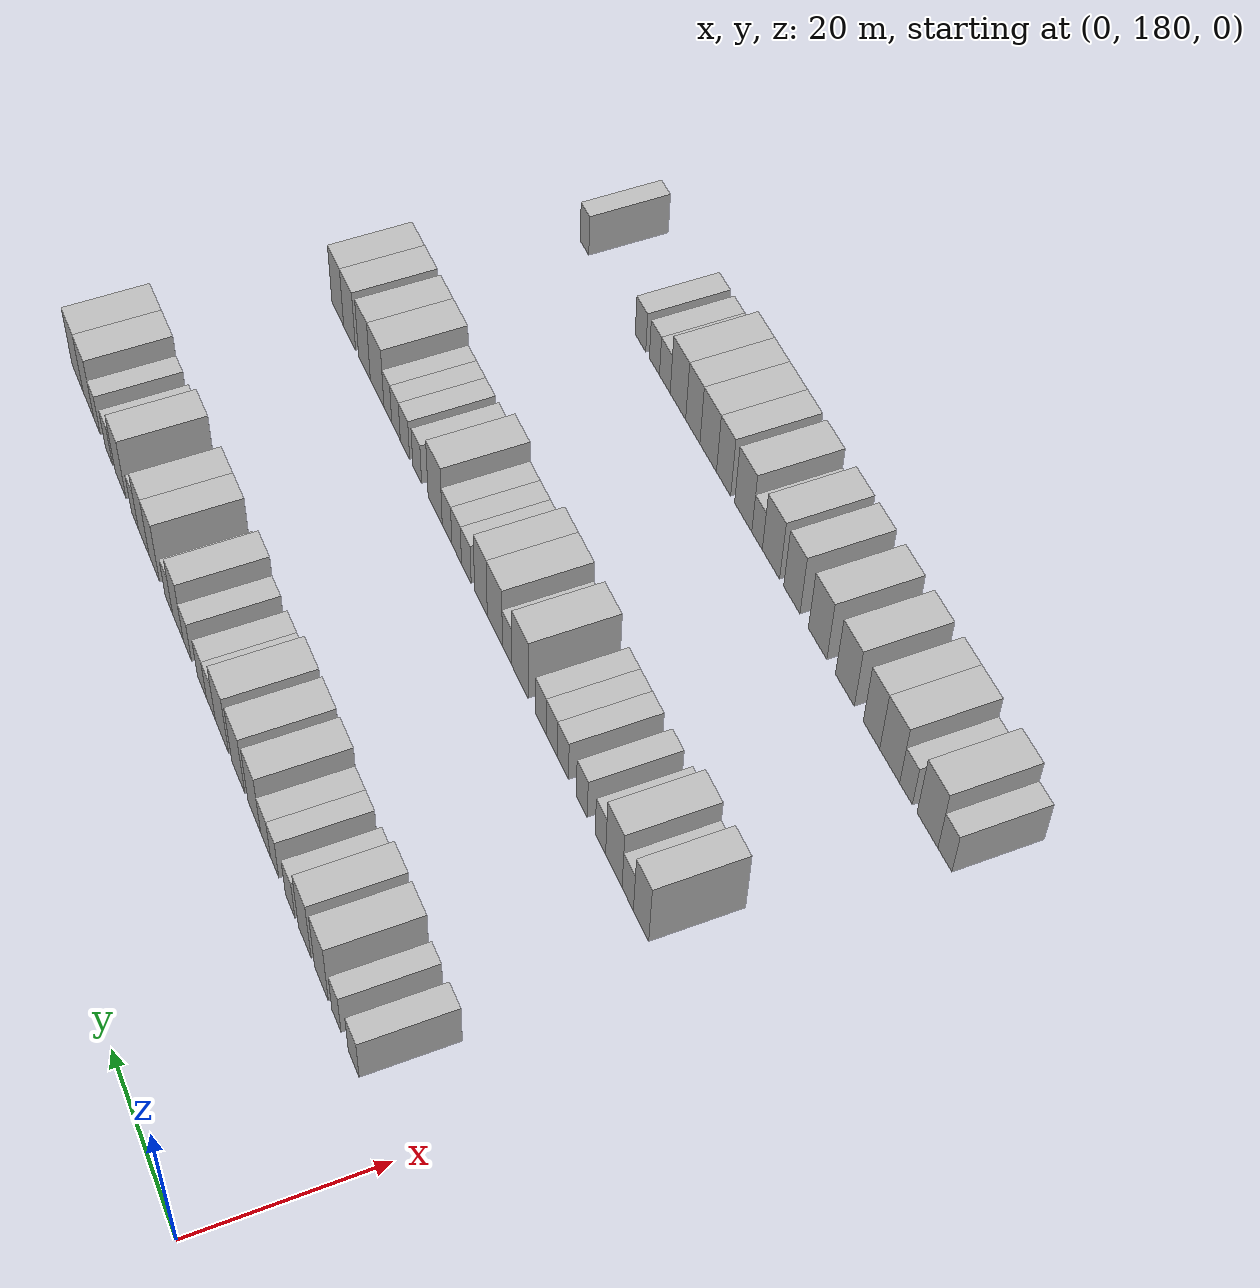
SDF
<sdf version="1.6">
 <world name="default">
  <model name="building_110">
   <static>1</static>
   <pose>25.0000 190.4862 0 0.000000 0.000000 0.000000</pose>
   <link name="link">
    <pose>0 0 3.00 0 0 0</pose>
    <collision name="collision"><geometry><box><size>10.0000 2.9526 6.0000</size></box></geometry></collision>
    <visual name="visual">
     <cast_shadows>0</cast_shadows>
     <geometry><box><size>10.0000 2.9526 6.0000</size></box></geometry>
     <material>
      <script>
       <uri>model://HANNAS_wall/materials/scripts</uri>
       <uri>model://HANNAS_wall/materials/textures</uri>
       <name>vrc/HANNAS_wall</name>
      </script>
     </material>
    </visual>
   </link>
  </model>
  <model name="building_111">
   <static>1</static>
   <pose>25.0000 195.2304 0 0.000000 0.000000 0.000000</pose>
   <link name="link">
    <pose>0 0 3.00 0 0 0</pose>
    <collision name="collision"><geometry><box><size>10.0000 2.5358 6.0000</size></box></geometry></collision>
    <visual name="visual">
     <cast_shadows>0</cast_shadows>
     <geometry><box><size>10.0000 2.5358 6.0000</size></box></geometry>
     <material>
      <script>
       <uri>model://HANNAS_wall/materials/scripts</uri>
       <uri>model://HANNAS_wall/materials/textures</uri>
       <name>vrc/HANNAS_wall</name>
      </script>
     </material>
    </visual>
   </link>
  </model>
  <model name="building_112">
   <static>1</static>
   <pose>25.0000 199.4481 0 0.000000 0.000000 0.000000</pose>
   <link name="link">
    <pose>0 0 4.50 0 0 0</pose>
    <collision name="collision"><geometry><box><size>10.0000 3.8996 9.0000</size></box></geometry></collision>
    <visual name="visual">
     <cast_shadows>0</cast_shadows>
     <geometry><box><size>10.0000 3.8996 9.0000</size></box></geometry>
     <material>
      <script>
       <uri>model://HANNAS_wall/materials/scripts</uri>
       <uri>model://HANNAS_wall/materials/textures</uri>
       <name>vrc/HANNAS_wall</name>
      </script>
     </material>
    </visual>
   </link>
  </model>
  <model name="building_113">
   <static>1</static>
   <pose>25.0000 204.2428 0 0.000000 0.000000 0.000000</pose>
   <link name="link">
    <pose>0 0 4.50 0 0 0</pose>
    <collision name="collision"><geometry><box><size>10.0000 3.6897 9.0000</size></box></geometry></collision>
    <visual name="visual">
     <cast_shadows>0</cast_shadows>
     <geometry><box><size>10.0000 3.6897 9.0000</size></box></geometry>
     <material>
      <script>
       <uri>model://HANNAS_wall/materials/scripts</uri>
       <uri>model://HANNAS_wall/materials/textures</uri>
       <name>vrc/HANNAS_wall</name>
      </script>
     </material>
    </visual>
   </link>
  </model>
  <model name="building_114">
   <static>1</static>
   <pose>25.0000 208.4911 0 0.000000 0.000000 0.000000</pose>
   <link name="link">
    <pose>0 0 3.00 0 0 0</pose>
    <collision name="collision"><geometry><box><size>10.0000 2.8071 6.0000</size></box></geometry></collision>
    <visual name="visual">
     <cast_shadows>0</cast_shadows>
     <geometry><box><size>10.0000 2.8071 6.0000</size></box></geometry>
     <material>
      <script>
       <uri>model://HANNAS_wall/materials/scripts</uri>
       <uri>model://HANNAS_wall/materials/textures</uri>
       <name>vrc/HANNAS_wall</name>
      </script>
     </material>
    </visual>
   </link>
  </model>
  <model name="building_115">
   <static>1</static>
   <pose>25.0000 213.1761 0 0.000000 0.000000 0.000000</pose>
   <link name="link">
    <pose>0 0 3.00 0 0 0</pose>
    <collision name="collision"><geometry><box><size>10.0000 2.5628 6.0000</size></box></geometry></collision>
    <visual name="visual">
     <cast_shadows>0</cast_shadows>
     <geometry><box><size>10.0000 2.5628 6.0000</size></box></geometry>
     <material>
      <script>
       <uri>model://HANNAS_wall/materials/scripts</uri>
       <uri>model://HANNAS_wall/materials/textures</uri>
       <name>vrc/HANNAS_wall</name>
      </script>
     </material>
    </visual>
   </link>
  </model>
  <model name="building_116">
   <static>1</static>
   <pose>25.0000 215.9427 0 0.000000 0.000000 0.000000</pose>
   <link name="link">
    <pose>0 0 3.00 0 0 0</pose>
    <collision name="collision"><geometry><box><size>10.0000 2.9705 6.0000</size></box></geometry></collision>
    <visual name="visual">
     <cast_shadows>0</cast_shadows>
     <geometry><box><size>10.0000 2.9705 6.0000</size></box></geometry>
     <material>
      <script>
       <uri>model://HANNAS_wall/materials/scripts</uri>
       <uri>model://HANNAS_wall/materials/textures</uri>
       <name>vrc/HANNAS_wall</name>
      </script>
     </material>
    </visual>
   </link>
  </model>
  <model name="building_117">
   <static>1</static>
   <pose>25.0000 219.3838 0 0.000000 0.000000 0.000000</pose>
   <link name="link">
    <pose>0 0 4.50 0 0 0</pose>
    <collision name="collision"><geometry><box><size>10.0000 3.9117 9.0000</size></box></geometry></collision>
    <visual name="visual">
     <cast_shadows>0</cast_shadows>
     <geometry><box><size>10.0000 3.9117 9.0000</size></box></geometry>
     <material>
      <script>
       <uri>model://HANNAS_wall/materials/scripts</uri>
       <uri>model://HANNAS_wall/materials/textures</uri>
       <name>vrc/HANNAS_wall</name>
      </script>
     </material>
    </visual>
   </link>
  </model>
  <model name="building_118">
   <static>1</static>
   <pose>25.0000 224.4171 0 0.000000 0.000000 0.000000</pose>
   <link name="link">
    <pose>0 0 4.50 0 0 0</pose>
    <collision name="collision"><geometry><box><size>10.0000 4.1549 9.0000</size></box></geometry></collision>
    <visual name="visual">
     <cast_shadows>0</cast_shadows>
     <geometry><box><size>10.0000 4.1549 9.0000</size></box></geometry>
     <material>
      <script>
       <uri>model://HANNAS_wall/materials/scripts</uri>
       <uri>model://HANNAS_wall/materials/textures</uri>
       <name>vrc/HANNAS_wall</name>
      </script>
     </material>
    </visual>
   </link>
  </model>
  <model name="building_119">
   <static>1</static>
   <pose>25.0000 229.6644 0 0.000000 0.000000 0.000000</pose>
   <link name="link">
    <pose>0 0 4.50 0 0 0</pose>
    <collision name="collision"><geometry><box><size>10.0000 4.3395 9.0000</size></box></geometry></collision>
    <visual name="visual">
     <cast_shadows>0</cast_shadows>
     <geometry><box><size>10.0000 4.3395 9.0000</size></box></geometry>
     <material>
      <script>
       <uri>model://HANNAS_wall/materials/scripts</uri>
       <uri>model://HANNAS_wall/materials/textures</uri>
       <name>vrc/HANNAS_wall</name>
      </script>
     </material>
    </visual>
   </link>
  </model>
  <model name="building_120">
   <static>1</static>
   <pose>25.0000 233.3207 0 0.000000 0.000000 0.000000</pose>
   <link name="link">
    <pose>0 0 3.00 0 0 0</pose>
    <collision name="collision"><geometry><box><size>10.0000 2.9731 6.0000</size></box></geometry></collision>
    <visual name="visual">
     <cast_shadows>0</cast_shadows>
     <geometry><box><size>10.0000 2.9731 6.0000</size></box></geometry>
     <material>
      <script>
       <uri>model://HANNAS_wall/materials/scripts</uri>
       <uri>model://HANNAS_wall/materials/textures</uri>
       <name>vrc/HANNAS_wall</name>
      </script>
     </material>
    </visual>
   </link>
  </model>
  <model name="building_121">
   <static>1</static>
   <pose>25.0000 236.2918 0 0.000000 0.000000 0.000000</pose>
   <link name="link">
    <pose>0 0 3.00 0 0 0</pose>
    <collision name="collision"><geometry><box><size>10.0000 2.9690 6.0000</size></box></geometry></collision>
    <visual name="visual">
     <cast_shadows>0</cast_shadows>
     <geometry><box><size>10.0000 2.9690 6.0000</size></box></geometry>
     <material>
      <script>
       <uri>model://HANNAS_wall/materials/scripts</uri>
       <uri>model://HANNAS_wall/materials/textures</uri>
       <name>vrc/HANNAS_wall</name>
      </script>
     </material>
    </visual>
   </link>
  </model>
  <model name="building_122">
   <static>1</static>
   <pose>25.0000 241.2074 0 0.000000 0.000000 0.000000</pose>
   <link name="link">
    <pose>0 0 3.00 0 0 0</pose>
    <collision name="collision"><geometry><box><size>10.0000 2.8623 6.0000</size></box></geometry></collision>
    <visual name="visual">
     <cast_shadows>0</cast_shadows>
     <geometry><box><size>10.0000 2.8623 6.0000</size></box></geometry>
     <material>
      <script>
       <uri>model://HANNAS_wall/materials/scripts</uri>
       <uri>model://HANNAS_wall/materials/textures</uri>
       <name>vrc/HANNAS_wall</name>
      </script>
     </material>
    </visual>
   </link>
  </model>
  <model name="building_123">
   <static>1</static>
   <pose>25.0000 244.4701 0 0.000000 0.000000 0.000000</pose>
   <link name="link">
    <pose>0 0 4.50 0 0 0</pose>
    <collision name="collision"><geometry><box><size>10.0000 3.6630 9.0000</size></box></geometry></collision>
    <visual name="visual">
     <cast_shadows>0</cast_shadows>
     <geometry><box><size>10.0000 3.6630 9.0000</size></box></geometry>
     <material>
      <script>
       <uri>model://HANNAS_wall/materials/scripts</uri>
       <uri>model://HANNAS_wall/materials/textures</uri>
       <name>vrc/HANNAS_wall</name>
      </script>
     </material>
    </visual>
   </link>
  </model>
  <model name="building_124">
   <static>1</static>
   <pose>25.0000 247.6205 0 0.000000 0.000000 0.000000</pose>
   <link name="link">
    <pose>0 0 3.00 0 0 0</pose>
    <collision name="collision"><geometry><box><size>10.0000 2.6377 6.0000</size></box></geometry></collision>
    <visual name="visual">
     <cast_shadows>0</cast_shadows>
     <geometry><box><size>10.0000 2.6377 6.0000</size></box></geometry>
     <material>
      <script>
       <uri>model://HANNAS_wall/materials/scripts</uri>
       <uri>model://HANNAS_wall/materials/textures</uri>
       <name>vrc/HANNAS_wall</name>
      </script>
     </material>
    </visual>
   </link>
  </model>
  <model name="building_125">
   <static>1</static>
   <pose>25.0000 252.8064 0 0.000000 0.000000 0.000000</pose>
   <link name="link">
    <pose>0 0 4.50 0 0 0</pose>
    <collision name="collision"><geometry><box><size>10.0000 3.7341 9.0000</size></box></geometry></collision>
    <visual name="visual">
     <cast_shadows>0</cast_shadows>
     <geometry><box><size>10.0000 3.7341 9.0000</size></box></geometry>
     <material>
      <script>
       <uri>model://HANNAS_wall/materials/scripts</uri>
       <uri>model://HANNAS_wall/materials/textures</uri>
       <name>vrc/HANNAS_wall</name>
      </script>
     </material>
    </visual>
   </link>
  </model>
  <model name="building_126">
   <static>1</static>
   <pose>25.0000 256.6091 0 0.000000 0.000000 0.000000</pose>
   <link name="link">
    <pose>0 0 4.50 0 0 0</pose>
    <collision name="collision"><geometry><box><size>10.0000 3.8714 9.0000</size></box></geometry></collision>
    <visual name="visual">
     <cast_shadows>0</cast_shadows>
     <geometry><box><size>10.0000 3.8714 9.0000</size></box></geometry>
     <material>
      <script>
       <uri>model://HANNAS_wall/materials/scripts</uri>
       <uri>model://HANNAS_wall/materials/textures</uri>
       <name>vrc/HANNAS_wall</name>
      </script>
     </material>
    </visual>
   </link>
  </model>
  <model name="building_127">
   <static>1</static>
   <pose>25.0000 259.8585 0 0.000000 0.000000 0.000000</pose>
   <link name="link">
    <pose>0 0 3.00 0 0 0</pose>
    <collision name="collision"><geometry><box><size>10.0000 2.6273 6.0000</size></box></geometry></collision>
    <visual name="visual">
     <cast_shadows>0</cast_shadows>
     <geometry><box><size>10.0000 2.6273 6.0000</size></box></geometry>
     <material>
      <script>
       <uri>model://HANNAS_wall/materials/scripts</uri>
       <uri>model://HANNAS_wall/materials/textures</uri>
       <name>vrc/HANNAS_wall</name>
      </script>
     </material>
    </visual>
   </link>
  </model>
  <model name="building_128">
   <static>1</static>
   <pose>25.0000 265.2239 0 0.000000 0.000000 0.000000</pose>
   <link name="link">
    <pose>0 0 4.50 0 0 0</pose>
    <collision name="collision"><geometry><box><size>10.0000 4.1036 9.0000</size></box></geometry></collision>
    <visual name="visual">
     <cast_shadows>0</cast_shadows>
     <geometry><box><size>10.0000 4.1036 9.0000</size></box></geometry>
     <material>
      <script>
       <uri>model://HANNAS_wall/materials/scripts</uri>
       <uri>model://HANNAS_wall/materials/textures</uri>
       <name>vrc/HANNAS_wall</name>
      </script>
     </material>
    </visual>
   </link>
  </model>
  <model name="building_129">
   <static>1</static>
   <pose>25.0000 269.6409 0 0.000000 0.000000 0.000000</pose>
   <link name="link">
    <pose>0 0 3.00 0 0 0</pose>
    <collision name="collision"><geometry><box><size>10.0000 2.7303 6.0000</size></box></geometry></collision>
    <visual name="visual">
     <cast_shadows>0</cast_shadows>
     <geometry><box><size>10.0000 2.7303 6.0000</size></box></geometry>
     <material>
      <script>
       <uri>model://HANNAS_wall/materials/scripts</uri>
       <uri>model://HANNAS_wall/materials/textures</uri>
       <name>vrc/HANNAS_wall</name>
      </script>
     </material>
    </visual>
   </link>
  </model>
  <model name="building_130">
   <static>1</static>
   <pose>25.0000 274.3004 0 0.000000 0.000000 0.000000</pose>
   <link name="link">
    <pose>0 0 3.00 0 0 0</pose>
    <collision name="collision"><geometry><box><size>10.0000 2.5887 6.0000</size></box></geometry></collision>
    <visual name="visual">
     <cast_shadows>0</cast_shadows>
     <geometry><box><size>10.0000 2.5887 6.0000</size></box></geometry>
     <material>
      <script>
       <uri>model://HANNAS_wall/materials/scripts</uri>
       <uri>model://HANNAS_wall/materials/textures</uri>
       <name>vrc/HANNAS_wall</name>
      </script>
     </material>
    </visual>
   </link>
  </model>
  <model name="building_131">
   <static>1</static>
   <pose>25.0000 277.7211 0 0.000000 0.000000 0.000000</pose>
   <link name="link">
    <pose>0 0 4.50 0 0 0</pose>
    <collision name="collision"><geometry><box><size>10.0000 4.2528 9.0000</size></box></geometry></collision>
    <visual name="visual">
     <cast_shadows>0</cast_shadows>
     <geometry><box><size>10.0000 4.2528 9.0000</size></box></geometry>
     <material>
      <script>
       <uri>model://HANNAS_wall/materials/scripts</uri>
       <uri>model://HANNAS_wall/materials/textures</uri>
       <name>vrc/HANNAS_wall</name>
      </script>
     </material>
    </visual>
   </link>
  </model>
  <model name="building_132">
   <static>1</static>
   <pose>25.0000 282.0344 0 0.000000 0.000000 0.000000</pose>
   <link name="link">
    <pose>0 0 4.50 0 0 0</pose>
    <collision name="collision"><geometry><box><size>10.0000 4.3738 9.0000</size></box></geometry></collision>
    <visual name="visual">
     <cast_shadows>0</cast_shadows>
     <geometry><box><size>10.0000 4.3738 9.0000</size></box></geometry>
     <material>
      <script>
       <uri>model://HANNAS_wall/materials/scripts</uri>
       <uri>model://HANNAS_wall/materials/textures</uri>
       <name>vrc/HANNAS_wall</name>
      </script>
     </material>
    </visual>
   </link>
  </model>
  <model name="building_249">
   <static>1</static>
   <pose>55.0000 194.1920 0 0.000000 0.000000 0.000000</pose>
   <link name="link">
    <pose>0 0 4.50 0 0 0</pose>
    <collision name="collision"><geometry><box><size>10.0000 3.6517 9.0000</size></box></geometry></collision>
    <visual name="visual">
     <cast_shadows>0</cast_shadows>
     <geometry><box><size>10.0000 3.6517 9.0000</size></box></geometry>
     <material>
      <script>
       <uri>model://HANNAS_wall/materials/scripts</uri>
       <uri>model://HANNAS_wall/materials/textures</uri>
       <name>vrc/HANNAS_wall</name>
      </script>
     </material>
    </visual>
   </link>
  </model>
  <model name="building_250">
   <static>1</static>
   <pose>55.0000 197.3903 0 0.000000 0.000000 0.000000</pose>
   <link name="link">
    <pose>0 0 3.00 0 0 0</pose>
    <collision name="collision"><geometry><box><size>10.0000 2.7451 6.0000</size></box></geometry></collision>
    <visual name="visual">
     <cast_shadows>0</cast_shadows>
     <geometry><box><size>10.0000 2.7451 6.0000</size></box></geometry>
     <material>
      <script>
       <uri>model://HANNAS_wall/materials/scripts</uri>
       <uri>model://HANNAS_wall/materials/textures</uri>
       <name>vrc/HANNAS_wall</name>
      </script>
     </material>
    </visual>
   </link>
  </model>
  <model name="building_251">
   <static>1</static>
   <pose>55.0000 200.7779 0 0.000000 0.000000 0.000000</pose>
   <link name="link">
    <pose>0 0 4.50 0 0 0</pose>
    <collision name="collision"><geometry><box><size>10.0000 4.0300 9.0000</size></box></geometry></collision>
    <visual name="visual">
     <cast_shadows>0</cast_shadows>
     <geometry><box><size>10.0000 4.0300 9.0000</size></box></geometry>
     <material>
      <script>
       <uri>model://HANNAS_wall/materials/scripts</uri>
       <uri>model://HANNAS_wall/materials/textures</uri>
       <name>vrc/HANNAS_wall</name>
      </script>
     </material>
    </visual>
   </link>
  </model>
  <model name="building_252">
   <static>1</static>
   <pose>55.0000 204.0960 0 0.000000 0.000000 0.000000</pose>
   <link name="link">
    <pose>0 0 3.00 0 0 0</pose>
    <collision name="collision"><geometry><box><size>10.0000 2.6061 6.0000</size></box></geometry></collision>
    <visual name="visual">
     <cast_shadows>0</cast_shadows>
     <geometry><box><size>10.0000 2.6061 6.0000</size></box></geometry>
     <material>
      <script>
       <uri>model://HANNAS_wall/materials/scripts</uri>
       <uri>model://HANNAS_wall/materials/textures</uri>
       <name>vrc/HANNAS_wall</name>
      </script>
     </material>
    </visual>
   </link>
  </model>
  <model name="building_253">
   <static>1</static>
   <pose>55.0000 208.7907 0 0.000000 0.000000 0.000000</pose>
   <link name="link">
    <pose>0 0 3.00 0 0 0</pose>
    <collision name="collision"><geometry><box><size>10.0000 2.7834 6.0000</size></box></geometry></collision>
    <visual name="visual">
     <cast_shadows>0</cast_shadows>
     <geometry><box><size>10.0000 2.7834 6.0000</size></box></geometry>
     <material>
      <script>
       <uri>model://HANNAS_wall/materials/scripts</uri>
       <uri>model://HANNAS_wall/materials/textures</uri>
       <name>vrc/HANNAS_wall</name>
      </script>
     </material>
    </visual>
   </link>
  </model>
  <model name="building_254">
   <static>1</static>
   <pose>55.0000 213.6158 0 0.000000 0.000000 0.000000</pose>
   <link name="link">
    <pose>0 0 3.00 0 0 0</pose>
    <collision name="collision"><geometry><box><size>10.0000 2.8669 6.0000</size></box></geometry></collision>
    <visual name="visual">
     <cast_shadows>0</cast_shadows>
     <geometry><box><size>10.0000 2.8669 6.0000</size></box></geometry>
     <material>
      <script>
       <uri>model://HANNAS_wall/materials/scripts</uri>
       <uri>model://HANNAS_wall/materials/textures</uri>
       <name>vrc/HANNAS_wall</name>
      </script>
     </material>
    </visual>
   </link>
  </model>
  <model name="building_255">
   <static>1</static>
   <pose>55.0000 216.5187 0 0.000000 0.000000 0.000000</pose>
   <link name="link">
    <pose>0 0 3.00 0 0 0</pose>
    <collision name="collision"><geometry><box><size>10.0000 2.9388 6.0000</size></box></geometry></collision>
    <visual name="visual">
     <cast_shadows>0</cast_shadows>
     <geometry><box><size>10.0000 2.9388 6.0000</size></box></geometry>
     <material>
      <script>
       <uri>model://HANNAS_wall/materials/scripts</uri>
       <uri>model://HANNAS_wall/materials/textures</uri>
       <name>vrc/HANNAS_wall</name>
      </script>
     </material>
    </visual>
   </link>
  </model>
  <model name="building_256">
   <static>1</static>
   <pose>55.0000 219.4095 0 0.000000 0.000000 0.000000</pose>
   <link name="link">
    <pose>0 0 3.00 0 0 0</pose>
    <collision name="collision"><geometry><box><size>10.0000 2.8428 6.0000</size></box></geometry></collision>
    <visual name="visual">
     <cast_shadows>0</cast_shadows>
     <geometry><box><size>10.0000 2.8428 6.0000</size></box></geometry>
     <material>
      <script>
       <uri>model://HANNAS_wall/materials/scripts</uri>
       <uri>model://HANNAS_wall/materials/textures</uri>
       <name>vrc/HANNAS_wall</name>
      </script>
     </material>
    </visual>
   </link>
  </model>
  <model name="building_257">
   <static>1</static>
   <pose>55.0000 225.0329 0 0.000000 0.000000 0.000000</pose>
   <link name="link">
    <pose>0 0 4.50 0 0 0</pose>
    <collision name="collision"><geometry><box><size>10.0000 4.4040 9.0000</size></box></geometry></collision>
    <visual name="visual">
     <cast_shadows>0</cast_shadows>
     <geometry><box><size>10.0000 4.4040 9.0000</size></box></geometry>
     <material>
      <script>
       <uri>model://HANNAS_wall/materials/scripts</uri>
       <uri>model://HANNAS_wall/materials/textures</uri>
       <name>vrc/HANNAS_wall</name>
      </script>
     </material>
    </visual>
   </link>
  </model>
  <model name="building_258">
   <static>1</static>
   <pose>55.0000 228.5661 0 0.000000 0.000000 0.000000</pose>
   <link name="link">
    <pose>0 0 3.00 0 0 0</pose>
    <collision name="collision"><geometry><box><size>10.0000 2.6625 6.0000</size></box></geometry></collision>
    <visual name="visual">
     <cast_shadows>0</cast_shadows>
     <geometry><box><size>10.0000 2.6625 6.0000</size></box></geometry>
     <material>
      <script>
       <uri>model://HANNAS_wall/materials/scripts</uri>
       <uri>model://HANNAS_wall/materials/textures</uri>
       <name>vrc/HANNAS_wall</name>
      </script>
     </material>
    </visual>
   </link>
  </model>
  <model name="building_259">
   <static>1</static>
   <pose>55.0000 232.0172 0 0.000000 0.000000 0.000000</pose>
   <link name="link">
    <pose>0 0 4.50 0 0 0</pose>
    <collision name="collision"><geometry><box><size>10.0000 4.2397 9.0000</size></box></geometry></collision>
    <visual name="visual">
     <cast_shadows>0</cast_shadows>
     <geometry><box><size>10.0000 4.2397 9.0000</size></box></geometry>
     <material>
      <script>
       <uri>model://HANNAS_wall/materials/scripts</uri>
       <uri>model://HANNAS_wall/materials/textures</uri>
       <name>vrc/HANNAS_wall</name>
      </script>
     </material>
    </visual>
   </link>
  </model>
  <model name="building_260">
   <static>1</static>
   <pose>55.0000 235.9446 0 0.000000 0.000000 0.000000</pose>
   <link name="link">
    <pose>0 0 4.50 0 0 0</pose>
    <collision name="collision"><geometry><box><size>10.0000 3.6149 9.0000</size></box></geometry></collision>
    <visual name="visual">
     <cast_shadows>0</cast_shadows>
     <geometry><box><size>10.0000 3.6149 9.0000</size></box></geometry>
     <material>
      <script>
       <uri>model://HANNAS_wall/materials/scripts</uri>
       <uri>model://HANNAS_wall/materials/textures</uri>
       <name>vrc/HANNAS_wall</name>
      </script>
     </material>
    </visual>
   </link>
  </model>
  <model name="building_261">
   <static>1</static>
   <pose>55.0000 240.1584 0 0.000000 0.000000 0.000000</pose>
   <link name="link">
    <pose>0 0 3.00 0 0 0</pose>
    <collision name="collision"><geometry><box><size>10.0000 2.8128 6.0000</size></box></geometry></collision>
    <visual name="visual">
     <cast_shadows>0</cast_shadows>
     <geometry><box><size>10.0000 2.8128 6.0000</size></box></geometry>
     <material>
      <script>
       <uri>model://HANNAS_wall/materials/scripts</uri>
       <uri>model://HANNAS_wall/materials/textures</uri>
       <name>vrc/HANNAS_wall</name>
      </script>
     </material>
    </visual>
   </link>
  </model>
  <model name="building_262">
   <static>1</static>
   <pose>55.0000 242.9865 0 0.000000 0.000000 0.000000</pose>
   <link name="link">
    <pose>0 0 3.00 0 0 0</pose>
    <collision name="collision"><geometry><box><size>10.0000 2.8435 6.0000</size></box></geometry></collision>
    <visual name="visual">
     <cast_shadows>0</cast_shadows>
     <geometry><box><size>10.0000 2.8435 6.0000</size></box></geometry>
     <material>
      <script>
       <uri>model://HANNAS_wall/materials/scripts</uri>
       <uri>model://HANNAS_wall/materials/textures</uri>
       <name>vrc/HANNAS_wall</name>
      </script>
     </material>
    </visual>
   </link>
  </model>
  <model name="building_263">
   <static>1</static>
   <pose>55.0000 245.8308 0 0.000000 0.000000 0.000000</pose>
   <link name="link">
    <pose>0 0 3.00 0 0 0</pose>
    <collision name="collision"><geometry><box><size>10.0000 2.8451 6.0000</size></box></geometry></collision>
    <visual name="visual">
     <cast_shadows>0</cast_shadows>
     <geometry><box><size>10.0000 2.8451 6.0000</size></box></geometry>
     <material>
      <script>
       <uri>model://HANNAS_wall/materials/scripts</uri>
       <uri>model://HANNAS_wall/materials/textures</uri>
       <name>vrc/HANNAS_wall</name>
      </script>
     </material>
    </visual>
   </link>
  </model>
  <model name="building_264">
   <static>1</static>
   <pose>55.0000 249.3842 0 0.000000 0.000000 0.000000</pose>
   <link name="link">
    <pose>0 0 4.50 0 0 0</pose>
    <collision name="collision"><geometry><box><size>10.0000 4.2617 9.0000</size></box></geometry></collision>
    <visual name="visual">
     <cast_shadows>0</cast_shadows>
     <geometry><box><size>10.0000 4.2617 9.0000</size></box></geometry>
     <material>
      <script>
       <uri>model://HANNAS_wall/materials/scripts</uri>
       <uri>model://HANNAS_wall/materials/textures</uri>
       <name>vrc/HANNAS_wall</name>
      </script>
     </material>
    </visual>
   </link>
  </model>
  <model name="building_265">
   <static>1</static>
   <pose>55.0000 254.8683 0 0.000000 0.000000 0.000000</pose>
   <link name="link">
    <pose>0 0 3.00 0 0 0</pose>
    <collision name="collision"><geometry><box><size>10.0000 2.7066 6.0000</size></box></geometry></collision>
    <visual name="visual">
     <cast_shadows>0</cast_shadows>
     <geometry><box><size>10.0000 2.7066 6.0000</size></box></geometry>
     <material>
      <script>
       <uri>model://HANNAS_wall/materials/scripts</uri>
       <uri>model://HANNAS_wall/materials/textures</uri>
       <name>vrc/HANNAS_wall</name>
      </script>
     </material>
    </visual>
   </link>
  </model>
  <model name="building_266">
   <static>1</static>
   <pose>55.0000 258.6798 0 0.000000 0.000000 0.000000</pose>
   <link name="link">
    <pose>0 0 3.00 0 0 0</pose>
    <collision name="collision"><geometry><box><size>10.0000 2.9165 6.0000</size></box></geometry></collision>
    <visual name="visual">
     <cast_shadows>0</cast_shadows>
     <geometry><box><size>10.0000 2.9165 6.0000</size></box></geometry>
     <material>
      <script>
       <uri>model://HANNAS_wall/materials/scripts</uri>
       <uri>model://HANNAS_wall/materials/textures</uri>
       <name>vrc/HANNAS_wall</name>
      </script>
     </material>
    </visual>
   </link>
  </model>
  <model name="building_267">
   <static>1</static>
   <pose>55.0000 261.4900 0 0.000000 0.000000 0.000000</pose>
   <link name="link">
    <pose>0 0 3.00 0 0 0</pose>
    <collision name="collision"><geometry><box><size>10.0000 2.7038 6.0000</size></box></geometry></collision>
    <visual name="visual">
     <cast_shadows>0</cast_shadows>
     <geometry><box><size>10.0000 2.7038 6.0000</size></box></geometry>
     <material>
      <script>
       <uri>model://HANNAS_wall/materials/scripts</uri>
       <uri>model://HANNAS_wall/materials/textures</uri>
       <name>vrc/HANNAS_wall</name>
      </script>
     </material>
    </visual>
   </link>
  </model>
  <model name="building_268">
   <static>1</static>
   <pose>55.0000 264.0859 0 0.000000 0.000000 0.000000</pose>
   <link name="link">
    <pose>0 0 3.00 0 0 0</pose>
    <collision name="collision"><geometry><box><size>10.0000 2.4882 6.0000</size></box></geometry></collision>
    <visual name="visual">
     <cast_shadows>0</cast_shadows>
     <geometry><box><size>10.0000 2.4882 6.0000</size></box></geometry>
     <material>
      <script>
       <uri>model://HANNAS_wall/materials/scripts</uri>
       <uri>model://HANNAS_wall/materials/textures</uri>
       <name>vrc/HANNAS_wall</name>
      </script>
     </material>
    </visual>
   </link>
  </model>
  <model name="building_269">
   <static>1</static>
   <pose>55.0000 267.5573 0 0.000000 0.000000 0.000000</pose>
   <link name="link">
    <pose>0 0 4.50 0 0 0</pose>
    <collision name="collision"><geometry><box><size>10.0000 4.4547 9.0000</size></box></geometry></collision>
    <visual name="visual">
     <cast_shadows>0</cast_shadows>
     <geometry><box><size>10.0000 4.4547 9.0000</size></box></geometry>
     <material>
      <script>
       <uri>model://HANNAS_wall/materials/scripts</uri>
       <uri>model://HANNAS_wall/materials/textures</uri>
       <name>vrc/HANNAS_wall</name>
      </script>
     </material>
    </visual>
   </link>
  </model>
  <model name="building_270">
   <static>1</static>
   <pose>55.0000 271.7180 0 0.000000 0.000000 0.000000</pose>
   <link name="link">
    <pose>0 0 4.50 0 0 0</pose>
    <collision name="collision"><geometry><box><size>10.0000 3.8666 9.0000</size></box></geometry></collision>
    <visual name="visual">
     <cast_shadows>0</cast_shadows>
     <geometry><box><size>10.0000 3.8666 9.0000</size></box></geometry>
     <material>
      <script>
       <uri>model://HANNAS_wall/materials/scripts</uri>
       <uri>model://HANNAS_wall/materials/textures</uri>
       <name>vrc/HANNAS_wall</name>
      </script>
     </material>
    </visual>
   </link>
  </model>
  <model name="building_271">
   <static>1</static>
   <pose>55.0000 276.6544 0 0.000000 0.000000 0.000000</pose>
   <link name="link">
    <pose>0 0 4.50 0 0 0</pose>
    <collision name="collision"><geometry><box><size>10.0000 4.0061 9.0000</size></box></geometry></collision>
    <visual name="visual">
     <cast_shadows>0</cast_shadows>
     <geometry><box><size>10.0000 4.0061 9.0000</size></box></geometry>
     <material>
      <script>
       <uri>model://HANNAS_wall/materials/scripts</uri>
       <uri>model://HANNAS_wall/materials/textures</uri>
       <name>vrc/HANNAS_wall</name>
      </script>
     </material>
    </visual>
   </link>
  </model>
  <model name="building_272">
   <static>1</static>
   <pose>55.0000 280.6542 0 0.000000 0.000000 0.000000</pose>
   <link name="link">
    <pose>0 0 4.50 0 0 0</pose>
    <collision name="collision"><geometry><box><size>10.0000 3.9934 9.0000</size></box></geometry></collision>
    <visual name="visual">
     <cast_shadows>0</cast_shadows>
     <geometry><box><size>10.0000 3.9934 9.0000</size></box></geometry>
     <material>
      <script>
       <uri>model://HANNAS_wall/materials/scripts</uri>
       <uri>model://HANNAS_wall/materials/textures</uri>
       <name>vrc/HANNAS_wall</name>
      </script>
     </material>
    </visual>
   </link>
  </model>
  <model name="building_382">
   <static>1</static>
   <pose>85.0000 190.1298 0 0.000000 0.000000 0.000000</pose>
   <link name="link">
    <pose>0 0 3.00 0 0 0</pose>
    <collision name="collision"><geometry><box><size>10.0000 2.9168 6.0000</size></box></geometry></collision>
    <visual name="visual">
     <cast_shadows>0</cast_shadows>
     <geometry><box><size>10.0000 2.9168 6.0000</size></box></geometry>
     <material>
      <script>
       <uri>model://HANNAS_wall/materials/scripts</uri>
       <uri>model://HANNAS_wall/materials/textures</uri>
       <name>vrc/HANNAS_wall</name>
      </script>
     </material>
    </visual>
   </link>
  </model>
  <model name="building_383">
   <static>1</static>
   <pose>85.0000 193.7921 0 0.000000 0.000000 0.000000</pose>
   <link name="link">
    <pose>0 0 4.50 0 0 0</pose>
    <collision name="collision"><geometry><box><size>10.0000 4.4079 9.0000</size></box></geometry></collision>
    <visual name="visual">
     <cast_shadows>0</cast_shadows>
     <geometry><box><size>10.0000 4.4079 9.0000</size></box></geometry>
     <material>
      <script>
       <uri>model://HANNAS_wall/materials/scripts</uri>
       <uri>model://HANNAS_wall/materials/textures</uri>
       <name>vrc/HANNAS_wall</name>
      </script>
     </material>
    </visual>
   </link>
  </model>
  <model name="building_384">
   <static>1</static>
   <pose>85.0000 198.3672 0 0.000000 0.000000 0.000000</pose>
   <link name="link">
    <pose>0 0 3.00 0 0 0</pose>
    <collision name="collision"><geometry><box><size>10.0000 2.7424 6.0000</size></box></geometry></collision>
    <visual name="visual">
     <cast_shadows>0</cast_shadows>
     <geometry><box><size>10.0000 2.7424 6.0000</size></box></geometry>
     <material>
      <script>
       <uri>model://HANNAS_wall/materials/scripts</uri>
       <uri>model://HANNAS_wall/materials/textures</uri>
       <name>vrc/HANNAS_wall</name>
      </script>
     </material>
    </visual>
   </link>
  </model>
  <model name="building_385">
   <static>1</static>
   <pose>85.0000 201.9283 0 0.000000 0.000000 0.000000</pose>
   <link name="link">
    <pose>0 0 4.50 0 0 0</pose>
    <collision name="collision"><geometry><box><size>10.0000 4.3797 9.0000</size></box></geometry></collision>
    <visual name="visual">
     <cast_shadows>0</cast_shadows>
     <geometry><box><size>10.0000 4.3797 9.0000</size></box></geometry>
     <material>
      <script>
       <uri>model://HANNAS_wall/materials/scripts</uri>
       <uri>model://HANNAS_wall/materials/textures</uri>
       <name>vrc/HANNAS_wall</name>
      </script>
     </material>
    </visual>
   </link>
  </model>
  <model name="building_386">
   <static>1</static>
   <pose>85.0000 205.9471 0 0.000000 0.000000 0.000000</pose>
   <link name="link">
    <pose>0 0 4.50 0 0 0</pose>
    <collision name="collision"><geometry><box><size>10.0000 3.6578 9.0000</size></box></geometry></collision>
    <visual name="visual">
     <cast_shadows>0</cast_shadows>
     <geometry><box><size>10.0000 3.6578 9.0000</size></box></geometry>
     <material>
      <script>
       <uri>model://HANNAS_wall/materials/scripts</uri>
       <uri>model://HANNAS_wall/materials/textures</uri>
       <name>vrc/HANNAS_wall</name>
      </script>
     </material>
    </visual>
   </link>
  </model>
  <model name="building_387">
   <static>1</static>
   <pose>85.0000 211.9366 0 0.000000 0.000000 0.000000</pose>
   <link name="link">
    <pose>0 0 4.50 0 0 0</pose>
    <collision name="collision"><geometry><box><size>10.0000 4.3212 9.0000</size></box></geometry></collision>
    <visual name="visual">
     <cast_shadows>0</cast_shadows>
     <geometry><box><size>10.0000 4.3212 9.0000</size></box></geometry>
     <material>
      <script>
       <uri>model://HANNAS_wall/materials/scripts</uri>
       <uri>model://HANNAS_wall/materials/textures</uri>
       <name>vrc/HANNAS_wall</name>
      </script>
     </material>
    </visual>
   </link>
  </model>
  <model name="building_388">
   <static>1</static>
   <pose>85.0000 218.2719 0 0.000000 0.000000 0.000000</pose>
   <link name="link">
    <pose>0 0 4.50 0 0 0</pose>
    <collision name="collision"><geometry><box><size>10.0000 4.3495 9.0000</size></box></geometry></collision>
    <visual name="visual">
     <cast_shadows>0</cast_shadows>
     <geometry><box><size>10.0000 4.3495 9.0000</size></box></geometry>
     <material>
      <script>
       <uri>model://HANNAS_wall/materials/scripts</uri>
       <uri>model://HANNAS_wall/materials/textures</uri>
       <name>vrc/HANNAS_wall</name>
      </script>
     </material>
    </visual>
   </link>
  </model>
  <model name="building_389">
   <static>1</static>
   <pose>85.0000 224.4124 0 0.000000 0.000000 0.000000</pose>
   <link name="link">
    <pose>0 0 4.50 0 0 0</pose>
    <collision name="collision"><geometry><box><size>10.0000 3.9315 9.0000</size></box></geometry></collision>
    <visual name="visual">
     <cast_shadows>0</cast_shadows>
     <geometry><box><size>10.0000 3.9315 9.0000</size></box></geometry>
     <material>
      <script>
       <uri>model://HANNAS_wall/materials/scripts</uri>
       <uri>model://HANNAS_wall/materials/textures</uri>
       <name>vrc/HANNAS_wall</name>
      </script>
     </material>
    </visual>
   </link>
  </model>
  <model name="building_390">
   <static>1</static>
   <pose>85.0000 229.5078 0 0.000000 0.000000 0.000000</pose>
   <link name="link">
    <pose>0 0 4.50 0 0 0</pose>
    <collision name="collision"><geometry><box><size>10.0000 4.2593 9.0000</size></box></geometry></collision>
    <visual name="visual">
     <cast_shadows>0</cast_shadows>
     <geometry><box><size>10.0000 4.2593 9.0000</size></box></geometry>
     <material>
      <script>
       <uri>model://HANNAS_wall/materials/scripts</uri>
       <uri>model://HANNAS_wall/materials/textures</uri>
       <name>vrc/HANNAS_wall</name>
      </script>
     </material>
    </visual>
   </link>
  </model>
  <model name="building_391">
   <static>1</static>
   <pose>85.0000 232.9535 0 0.000000 0.000000 0.000000</pose>
   <link name="link">
    <pose>0 0 3.00 0 0 0</pose>
    <collision name="collision"><geometry><box><size>10.0000 2.6321 6.0000</size></box></geometry></collision>
    <visual name="visual">
     <cast_shadows>0</cast_shadows>
     <geometry><box><size>10.0000 2.6321 6.0000</size></box></geometry>
     <material>
      <script>
       <uri>model://HANNAS_wall/materials/scripts</uri>
       <uri>model://HANNAS_wall/materials/textures</uri>
       <name>vrc/HANNAS_wall</name>
      </script>
     </material>
    </visual>
   </link>
  </model>
  <model name="building_392">
   <static>1</static>
   <pose>85.0000 236.4451 0 0.000000 0.000000 0.000000</pose>
   <link name="link">
    <pose>0 0 4.50 0 0 0</pose>
    <collision name="collision"><geometry><box><size>10.0000 4.3509 9.0000</size></box></geometry></collision>
    <visual name="visual">
     <cast_shadows>0</cast_shadows>
     <geometry><box><size>10.0000 4.3509 9.0000</size></box></geometry>
     <material>
      <script>
       <uri>model://HANNAS_wall/materials/scripts</uri>
       <uri>model://HANNAS_wall/materials/textures</uri>
       <name>vrc/HANNAS_wall</name>
      </script>
     </material>
    </visual>
   </link>
  </model>
  <model name="building_393">
   <static>1</static>
   <pose>85.0000 241.4565 0 0.000000 0.000000 0.000000</pose>
   <link name="link">
    <pose>0 0 4.50 0 0 0</pose>
    <collision name="collision"><geometry><box><size>10.0000 3.6719 9.0000</size></box></geometry></collision>
    <visual name="visual">
     <cast_shadows>0</cast_shadows>
     <geometry><box><size>10.0000 3.6719 9.0000</size></box></geometry>
     <material>
      <script>
       <uri>model://HANNAS_wall/materials/scripts</uri>
       <uri>model://HANNAS_wall/materials/textures</uri>
       <name>vrc/HANNAS_wall</name>
      </script>
     </material>
    </visual>
   </link>
  </model>
  <model name="building_394">
   <static>1</static>
   <pose>85.0000 245.4741 0 0.000000 0.000000 0.000000</pose>
   <link name="link">
    <pose>0 0 4.50 0 0 0</pose>
    <collision name="collision"><geometry><box><size>10.0000 4.3633 9.0000</size></box></geometry></collision>
    <visual name="visual">
     <cast_shadows>0</cast_shadows>
     <geometry><box><size>10.0000 4.3633 9.0000</size></box></geometry>
     <material>
      <script>
       <uri>model://HANNAS_wall/materials/scripts</uri>
       <uri>model://HANNAS_wall/materials/textures</uri>
       <name>vrc/HANNAS_wall</name>
      </script>
     </material>
    </visual>
   </link>
  </model>
  <model name="building_395">
   <static>1</static>
   <pose>85.0000 249.5579 0 0.000000 0.000000 0.000000</pose>
   <link name="link">
    <pose>0 0 4.50 0 0 0</pose>
    <collision name="collision"><geometry><box><size>10.0000 3.8043 9.0000</size></box></geometry></collision>
    <visual name="visual">
     <cast_shadows>0</cast_shadows>
     <geometry><box><size>10.0000 3.8043 9.0000</size></box></geometry>
     <material>
      <script>
       <uri>model://HANNAS_wall/materials/scripts</uri>
       <uri>model://HANNAS_wall/materials/textures</uri>
       <name>vrc/HANNAS_wall</name>
      </script>
     </material>
    </visual>
   </link>
  </model>
  <model name="building_396">
   <static>1</static>
   <pose>85.0000 253.5623 0 0.000000 0.000000 0.000000</pose>
   <link name="link">
    <pose>0 0 4.50 0 0 0</pose>
    <collision name="collision"><geometry><box><size>10.0000 4.2045 9.0000</size></box></geometry></collision>
    <visual name="visual">
     <cast_shadows>0</cast_shadows>
     <geometry><box><size>10.0000 4.2045 9.0000</size></box></geometry>
     <material>
      <script>
       <uri>model://HANNAS_wall/materials/scripts</uri>
       <uri>model://HANNAS_wall/materials/textures</uri>
       <name>vrc/HANNAS_wall</name>
      </script>
     </material>
    </visual>
   </link>
  </model>
  <model name="building_397">
   <static>1</static>
   <pose>85.0000 257.1442 0 0.000000 0.000000 0.000000</pose>
   <link name="link">
    <pose>0 0 3.00 0 0 0</pose>
    <collision name="collision"><geometry><box><size>10.0000 2.9591 6.0000</size></box></geometry></collision>
    <visual name="visual">
     <cast_shadows>0</cast_shadows>
     <geometry><box><size>10.0000 2.9591 6.0000</size></box></geometry>
     <material>
      <script>
       <uri>model://HANNAS_wall/materials/scripts</uri>
       <uri>model://HANNAS_wall/materials/textures</uri>
       <name>vrc/HANNAS_wall</name>
      </script>
     </material>
    </visual>
   </link>
  </model>
  <model name="building_398">
   <static>1</static>
   <pose>85.0000 260.0306 0 0.000000 0.000000 0.000000</pose>
   <link name="link">
    <pose>0 0 3.00 0 0 0</pose>
    <collision name="collision"><geometry><box><size>10.0000 2.8139 6.0000</size></box></geometry></collision>
    <visual name="visual">
     <cast_shadows>0</cast_shadows>
     <geometry><box><size>10.0000 2.8139 6.0000</size></box></geometry>
     <material>
      <script>
       <uri>model://HANNAS_wall/materials/scripts</uri>
       <uri>model://HANNAS_wall/materials/textures</uri>
       <name>vrc/HANNAS_wall</name>
      </script>
     </material>
    </visual>
   </link>
  </model>
  <model name="building_399">
   <static>1</static>
   <pose>85.0000 263.9244 0 0.000000 0.000000 0.000000</pose>
   <link name="link">
    <pose>0 0 3.00 0 0 0</pose>
    <collision name="collision"><geometry><box><size>10.0000 2.9736 6.0000</size></box></geometry></collision>
    <visual name="visual">
     <cast_shadows>0</cast_shadows>
     <geometry><box><size>10.0000 2.9736 6.0000</size></box></geometry>
     <material>
      <script>
       <uri>model://HANNAS_wall/materials/scripts</uri>
       <uri>model://HANNAS_wall/materials/textures</uri>
       <name>vrc/HANNAS_wall</name>
      </script>
     </material>
    </visual>
   </link>
  </model>
  <model name="building_400">
   <static>1</static>
   <pose>85.0000 280.2489 0 0.000000 0.000000 0.000000</pose>
   <link name="link">
    <pose>0 0 3.00 0 0 0</pose>
    <collision name="collision"><geometry><box><size>10.0000 2.5585 6.0000</size></box></geometry></collision>
    <visual name="visual">
     <cast_shadows>0</cast_shadows>
     <geometry><box><size>10.0000 2.5585 6.0000</size></box></geometry>
     <material>
      <script>
       <uri>model://HANNAS_wall/materials/scripts</uri>
       <uri>model://HANNAS_wall/materials/textures</uri>
       <name>vrc/HANNAS_wall</name>
      </script>
     </material>
    </visual>
   </link>
  </model>
 </world>
</sdf>
